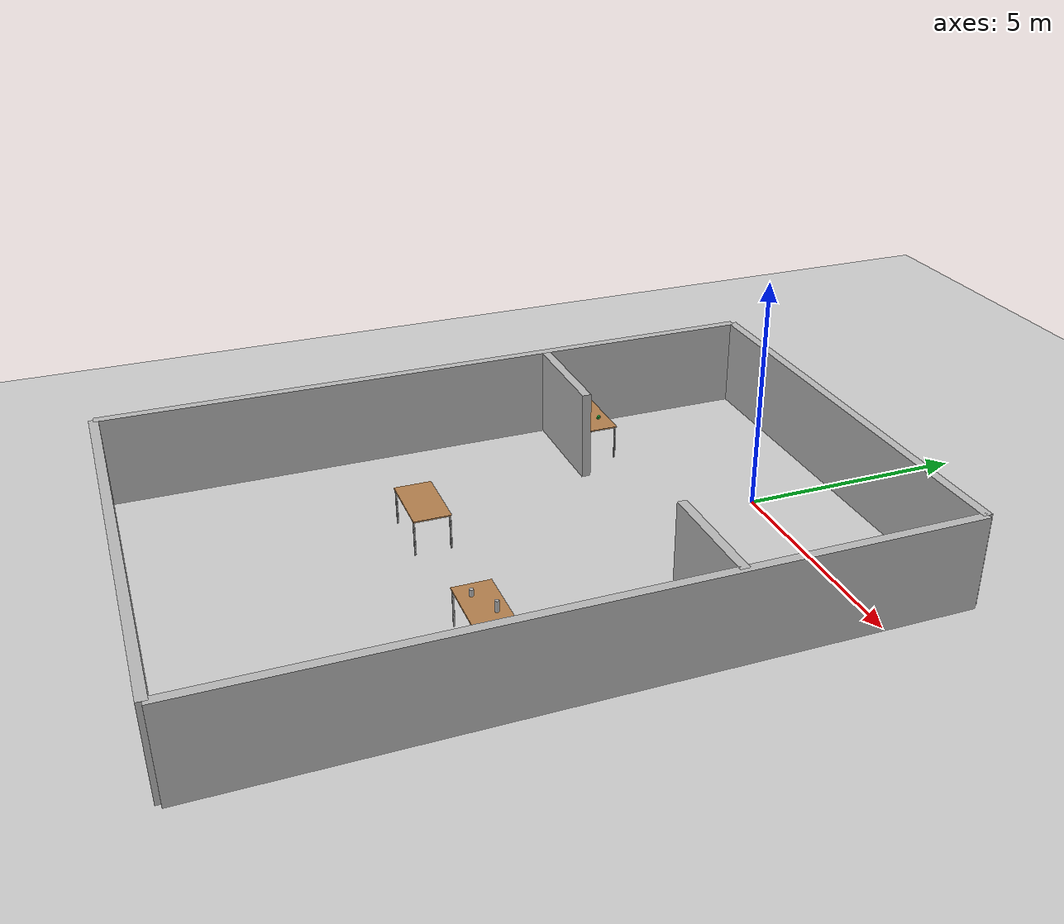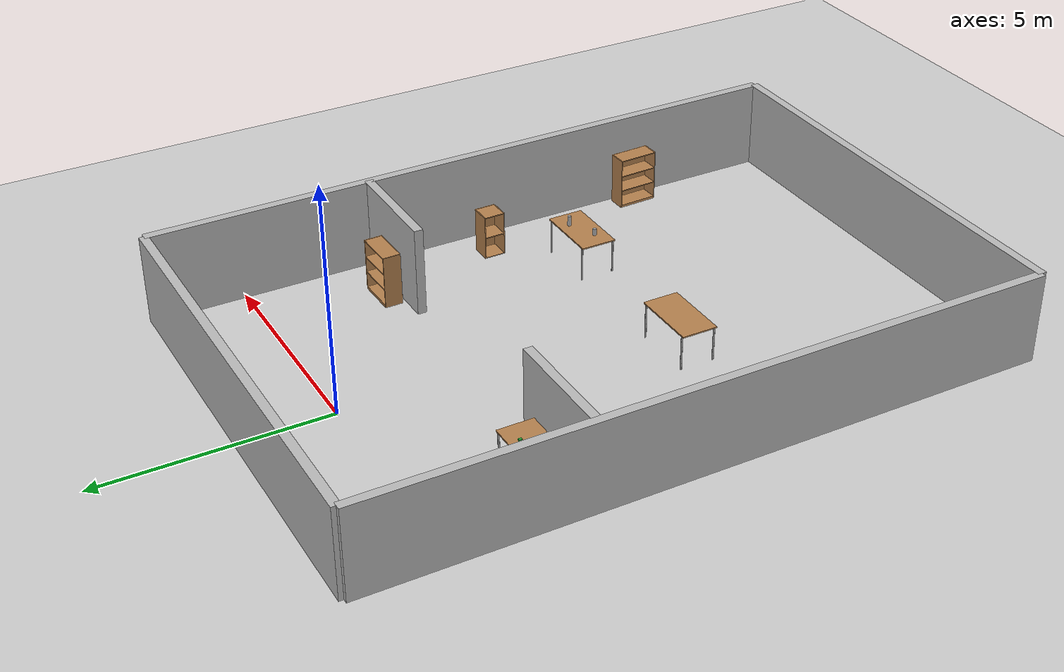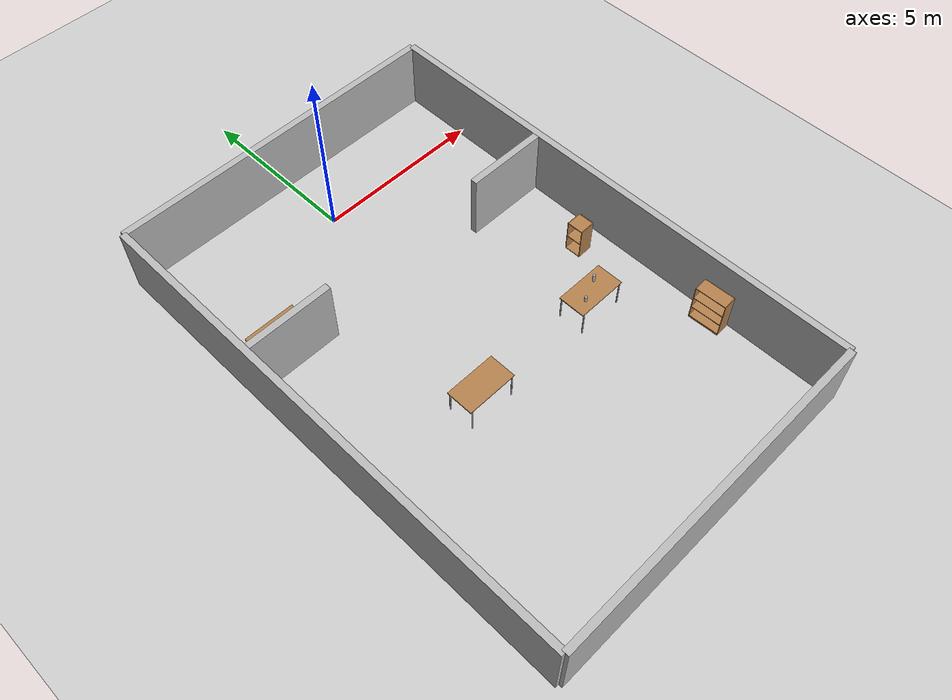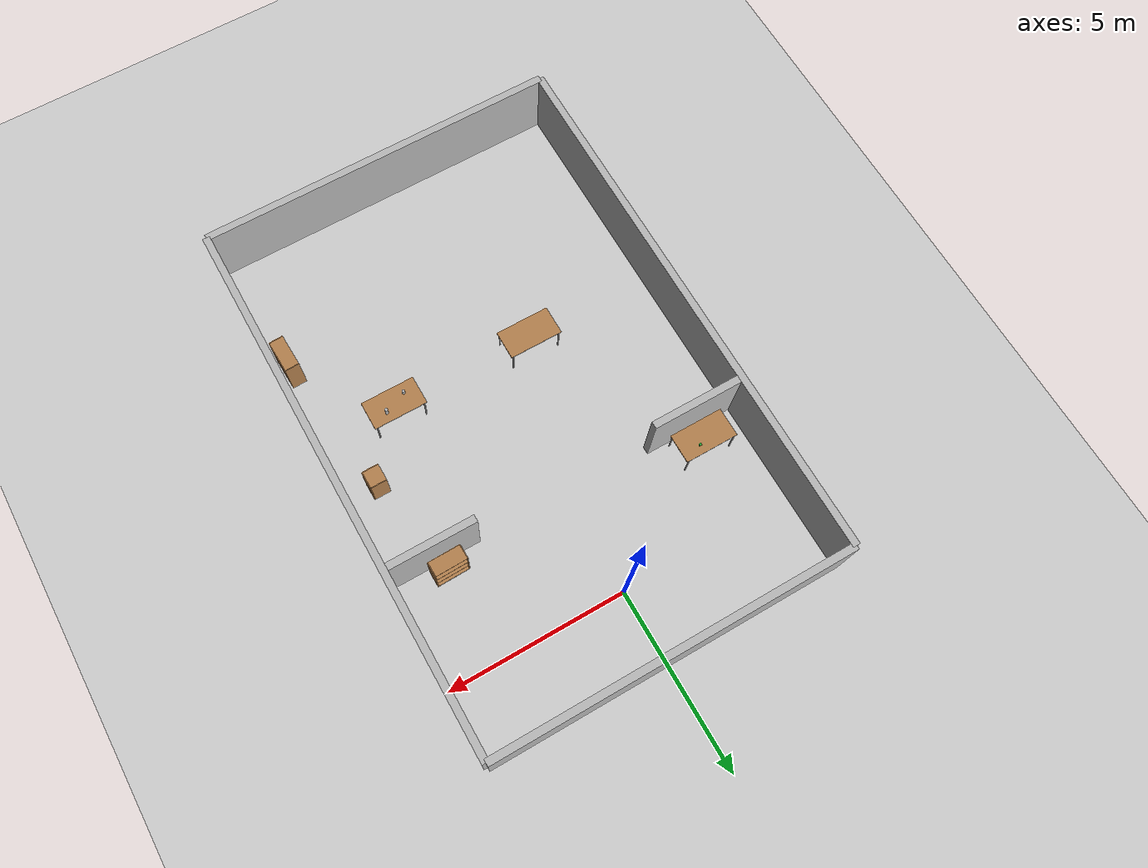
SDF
<sdf version="1.6">
 <world name="default">
  <physics name="default_physics" default="0" type="ode">
   <ode>
    <solver>
     <type>quick</type>
     <iters>20</iters>
     <sor>1</sor>
     <use_dynamic_moi_rescaling>0</use_dynamic_moi_rescaling>
    </solver>
    <constraints>
     <cfm>0</cfm>
     <erp>0.2</erp>
     <contact_max_correcting_vel>100</contact_max_correcting_vel>
     <contact_surface_layer>0</contact_surface_layer>
    </constraints>
   </ode>
   <real_time_update_rate>1000</real_time_update_rate>
   <max_step_size>0.001</max_step_size>
   <real_time_factor>1</real_time_factor>
   <max_contacts>20</max_contacts>
  </physics>
  <light name="sun" type="directional">
   <pose>0 0 10 0 -0 0</pose>
   <diffuse>0.8 0.8 0.8 1</diffuse>
   <specular>0.2 0.2 0.2 1</specular>
   <attenuation>
    <range>1000</range>
    <constant>0.9</constant>
    <linear>0.01</linear>
    <quadratic>0.001</quadratic>
   </attenuation>
   <direction>0.5 0.1 -0.9</direction>
  </light>
  <model name="ground_plane">
   <static>1</static>
   <link name="link">
    <collision name="collision">
     <geometry><plane><normal>0 0 1</normal><size>100 100</size></plane></geometry>
     <surface><friction><ode><mu>100</mu><mu2>50</mu2></ode></friction></surface>
    </collision>
    <visual name="visual">
     <cast_shadows>0</cast_shadows>
     <geometry><plane><normal>0 0 1</normal><size>100 100</size></plane></geometry>
     <material>
      <script><uri>file://media/materials/scripts/gazebo.material</uri><name>Gazebo/Grey</name></script>
     </material>
    </visual>
    <velocity_decay><linear>0</linear><angular>0</angular></velocity_decay>
   </link>
  </model>
  <model name="wall_1_model">
   <pose>0 -13 1 0 -0 0</pose>
   <static>1</static>
   <link name="wall_1_body">
    <inertial>
     <mass>1</mass>
     <inertia><ixx>1</ixx><ixy>0</ixy><ixz>0</ixz><iyy>1</iyy><iyz>0</iyz><izz>1</izz></inertia>
    </inertial>
    <collision name="collision"><geometry><box><size>10 0.2 2</size></box></geometry></collision>
    <visual name="visual"><geometry><box><size>10 0.2 2</size></box></geometry></visual>
    <velocity_decay><linear>0</linear><angular>0</angular></velocity_decay>
   </link>
  </model>
  <model name="wall_2_model">
   <pose>0 2 1 0 -0 0</pose>
   <static>1</static>
   <link name="wall_2_body">
    <inertial>
     <mass>1</mass>
     <inertia><ixx>1</ixx><ixy>0</ixy><ixz>0</ixz><iyy>1</iyy><iyz>0</iyz><izz>1</izz></inertia>
    </inertial>
    <collision name="collision"><geometry><box><size>10 0.2 2</size></box></geometry></collision>
    <visual name="visual"><geometry><box><size>10 0.2 2</size></box></geometry></visual>
    <velocity_decay><linear>0</linear><angular>0</angular></velocity_decay>
   </link>
  </model>
  <model name="wall_3_model">
   <pose>-5 -5.5 1 0 -0 0</pose>
   <static>1</static>
   <link name="wall_3_body">
    <inertial>
     <mass>1</mass>
     <inertia><ixx>1</ixx><ixy>0</ixy><ixz>0</ixz><iyy>1</iyy><iyz>0</iyz><izz>1</izz></inertia>
    </inertial>
    <collision name="collision"><geometry><box><size>0.2 15 2</size></box></geometry></collision>
    <visual name="visual"><geometry><box><size>0.2 15 2</size></box></geometry></visual>
    <velocity_decay><linear>0</linear><angular>0</angular></velocity_decay>
   </link>
  </model>
  <model name="wall_4_model">
   <pose>5 -5.5 1 0 -0 0</pose>
   <static>1</static>
   <link name="wall_4_body">
    <inertial>
     <mass>1</mass>
     <inertia><ixx>1</ixx><ixy>0</ixy><ixz>0</ixz><iyy>1</iyy><iyz>0</iyz><izz>1</izz></inertia>
    </inertial>
    <collision name="collision"><geometry><box><size>0.2 15 2</size></box></geometry></collision>
    <visual name="visual"><geometry><box><size>0.2 15 2</size></box></geometry></visual>
    <velocity_decay><linear>0</linear><angular>0</angular></velocity_decay>
   </link>
  </model>
  <model name="wall_6_model">
   <pose>3.75 -3 1 0 -0 0</pose>
   <static>1</static>
   <link name="wall_6_body">
    <inertial>
     <mass>1</mass>
     <inertia><ixx>1</ixx><ixy>0</ixy><ixz>0</ixz><iyy>1</iyy><iyz>0</iyz><izz>1</izz></inertia>
    </inertial>
    <collision name="collision"><geometry><box><size>2.5 0.2 2</size></box></geometry></collision>
    <visual name="visual"><geometry><box><size>2.5 0.2 2</size></box></geometry></visual>
    <velocity_decay><linear>0</linear><angular>0</angular></velocity_decay>
   </link>
  </model>
  <scene><ambient>0.2 0.2 0.2 1</ambient><background>0.7 0.7 0.7 1</background><shadows>1</shadows></scene>
  <model name="cabinet_0">
   <static>0</static>
   <link name="cabinet_bottom_plate">
    <inertial>
     <pose>0 0 -1 0 -0 0</pose>
     <inertia><ixx>2.05</ixx><ixy>0</ixy><ixz>0</ixz><iyy>2.05</iyy><iyz>0</iyz><izz>2.05</izz></inertia>
     <mass>25</mass>
    </inertial>
    <collision name="cabinet_bottom_plate_geom">
     <pose>0 0 0.01 0 -0 0</pose>
     <geometry><box><size>0.45 0.45 0.02</size></box></geometry>
    </collision>
    <visual name="cabinet_bottom_plate_geom_visual">
     <pose>0 0 0.01 0 -0 0</pose>
     <geometry><box><size>0.45 0.45 0.02</size></box></geometry>
     <material>
      <script><uri>file://media/materials/scripts/gazebo.material</uri><name>Gazebo/Wood</name></script>
     </material>
    </visual>
    <collision name="cabinet_bottom_plate_geom_cabinet_back_plate">
     <pose>0.235 0 0.51 0 -0 0</pose>
     <geometry><box><size>0.02 0.45 1.02</size></box></geometry>
    </collision>
    <visual name="cabinet_bottom_plate_geom_cabinet_back_plate_visual">
     <pose>0.235 0 0.51 0 -0 0</pose>
     <geometry><box><size>0.02 0.45 1.02</size></box></geometry>
     <material>
      <script><uri>file://media/materials/scripts/gazebo.material</uri><name>Gazebo/Wood</name></script>
     </material>
    </visual>
    <collision name="cabinet_bottom_plate_geom_cabinet_left_plate">
     <pose>0 0.235 0.51 0 -0 0</pose>
     <geometry><box><size>0.45 0.02 1.02</size></box></geometry>
    </collision>
    <visual name="cabinet_bottom_plate_geom_cabinet_left_plate_visual">
     <pose>0 0.235 0.51 0 -0 0</pose>
     <geometry><box><size>0.45 0.02 1.02</size></box></geometry>
     <material>
      <script><uri>file://media/materials/scripts/gazebo.material</uri><name>Gazebo/Wood</name></script>
     </material>
    </visual>
    <collision name="cabinet_bottom_plate_geom_cabinet_middle_plate">
     <pose>0 0 0.51 0 -0 0</pose>
     <geometry><box><size>0.45 0.45 0.02</size></box></geometry>
    </collision>
    <visual name="cabinet_bottom_plate_geom_cabinet_middle_plate_visual">
     <pose>0 0 0.51 0 -0 0</pose>
     <geometry><box><size>0.45 0.45 0.02</size></box></geometry>
     <material>
      <script><uri>file://media/materials/scripts/gazebo.material</uri><name>Gazebo/Wood</name></script>
     </material>
    </visual>
    <collision name="cabinet_bottom_plate_geom_cabinet_right_plate">
     <pose>0 -0.235 0.51 0 -0 0</pose>
     <geometry><box><size>0.45 0.02 1.02</size></box></geometry>
    </collision>
    <visual name="cabinet_bottom_plate_geom_cabinet_right_plate_visual">
     <pose>0 -0.235 0.51 0 -0 0</pose>
     <geometry><box><size>0.45 0.02 1.02</size></box></geometry>
     <material>
      <script><uri>file://media/materials/scripts/gazebo.material</uri><name>Gazebo/Wood</name></script>
     </material>
    </visual>
    <collision name="cabinet_bottom_plate_geom_cabinet_top_plate">
     <pose>0 0 1.01 0 -0 0</pose>
     <geometry><box><size>0.45 0.45 0.02</size></box></geometry>
    </collision>
    <visual name="cabinet_bottom_plate_geom_cabinet_top_plate_visual">
     <pose>0 0 1.01 0 -0 0</pose>
     <geometry><box><size>0.45 0.45 0.02</size></box></geometry>
     <material>
      <script><uri>file://media/materials/scripts/gazebo.material</uri><name>Gazebo/Wood</name></script>
     </material>
    </visual>
    <velocity_decay><linear>0</linear><angular>0</angular></velocity_decay>
   </link>
   <pose>4.09035 -5.43081 0 0 -1e-06 0.012799</pose>
  </model>
  <model name="bookshelf">
   <static>0</static>
   <link name="link">
    <inertial>
     <mass>1</mass>
     <inertia><ixx>1</ixx><ixy>0</ixy><ixz>0</ixz><iyy>1</iyy><iyz>0</iyz><izz>1</izz></inertia>
    </inertial>
    <collision name="back">
     <pose>0 0.005 0.6 0 -0 0</pose>
     <geometry><box><size>0.9 0.01 1.2</size></box></geometry>
    </collision>
    <visual name="visual1">
     <pose>0 0.005 0.6 0 -0 0</pose>
     <geometry><box><size>0.9 0.01 1.2</size></box></geometry>
     <material>
      <script><uri>file://media/materials/scripts/gazebo.material</uri><name>Gazebo/Wood</name></script>
     </material>
    </visual>
    <collision name="left_side">
     <pose>0.45 -0.195 0.6 0 -0 0</pose>
     <geometry><box><size>0.02 0.4 1.2</size></box></geometry>
    </collision>
    <visual name="visual2">
     <pose>0.45 -0.195 0.6 0 -0 0</pose>
     <geometry><box><size>0.02 0.4 1.2</size></box></geometry>
     <material>
      <script><uri>file://media/materials/scripts/gazebo.material</uri><name>Gazebo/Wood</name></script>
     </material>
    </visual>
    <collision name="right_side">
     <pose>-0.45 -0.195 0.6 0 -0 0</pose>
     <geometry><box><size>0.02 0.4 1.2</size></box></geometry>
    </collision>
    <visual name="visual3">
     <pose>-0.45 -0.195 0.6 0 -0 0</pose>
     <geometry><box><size>0.02 0.4 1.2</size></box></geometry>
     <material>
      <script><uri>file://media/materials/scripts/gazebo.material</uri><name>Gazebo/Wood</name></script>
     </material>
    </visual>
    <collision name="bottom">
     <pose>0 -0.195 0.03 0 -0 0</pose>
     <geometry><box><size>0.88 0.4 0.06</size></box></geometry>
    </collision>
    <visual name="visual4">
     <pose>0 -0.195 0.03 0 -0 0</pose>
     <geometry><box><size>0.88 0.4 0.06</size></box></geometry>
     <material>
      <script><uri>file://media/materials/scripts/gazebo.material</uri><name>Gazebo/Wood</name></script>
     </material>
    </visual>
    <collision name="top">
     <pose>0 -0.195 1.19 0 -0 0</pose>
     <geometry><box><size>0.88 0.4 0.02</size></box></geometry>
    </collision>
    <visual name="visual5">
     <pose>0 -0.195 1.19 0 -0 0</pose>
     <geometry><box><size>0.88 0.4 0.02</size></box></geometry>
     <material>
      <script><uri>file://media/materials/scripts/gazebo.material</uri><name>Gazebo/Wood</name></script>
     </material>
    </visual>
    <collision name="low_shelf">
     <pose>0 -0.195 0.43 0 -0 0</pose>
     <geometry><box><size>0.88 0.4 0.02</size></box></geometry>
    </collision>
    <visual name="visual6">
     <pose>0 -0.195 0.43 0 -0 0</pose>
     <geometry><box><size>0.88 0.4 0.02</size></box></geometry>
     <material>
      <script><uri>file://media/materials/scripts/gazebo.material</uri><name>Gazebo/Wood</name></script>
     </material>
    </visual>
    <collision name="high_shelf">
     <pose>0 -0.195 0.8 0 -0 0</pose>
     <geometry><box><size>0.88 0.4 0.02</size></box></geometry>
    </collision>
    <visual name="visual7">
     <pose>0 -0.195 0.8 0 -0 0</pose>
     <geometry><box><size>0.88 0.4 0.02</size></box></geometry>
     <material>
      <script><uri>file://media/materials/scripts/gazebo.material</uri><name>Gazebo/Wood</name></script>
     </material>
    </visual>
    <velocity_decay><linear>0</linear><angular>0</angular></velocity_decay>
   </link>
   <pose>4.82374 -9.44357 0 -4.6e-05 -0 -1.53171</pose>
  </model>
  <model name="table">
   <static>1</static>
   <link name="link">
    <collision name="surface">
     <pose>0 0 0.9 0 -0 0</pose>
     <geometry><box><size>1.5 0.8 0.03</size></box></geometry>
    </collision>
    <visual name="visual1">
     <pose>0 0 0.9 0 -0 0</pose>
     <geometry><box><size>1.5 0.8 0.03</size></box></geometry>
     <material>
      <script><uri>file://media/materials/scripts/gazebo.material</uri><name>Gazebo/Wood</name></script>
     </material>
    </visual>
    <collision name="front_left_leg">
     <pose>0.68 0.38 0.5 0 -0 0</pose>
     <geometry><cylinder><radius>0.02</radius><length>0.8</length></cylinder></geometry>
    </collision>
    <visual name="front_left_leg">
     <pose>0.68 0.38 0.5 0 -0 0</pose>
     <geometry><cylinder><radius>0.02</radius><length>0.8</length></cylinder></geometry>
     <material>
      <script><uri>file://media/materials/scripts/gazebo.material</uri><name>Gazebo/Grey</name></script>
     </material>
    </visual>
    <collision name="front_right_leg">
     <pose>0.68 -0.38 0.5 0 -0 0</pose>
     <geometry><cylinder><radius>0.02</radius><length>0.8</length></cylinder></geometry>
    </collision>
    <visual name="front_right_leg">
     <pose>0.68 -0.38 0.5 0 -0 0</pose>
     <geometry><cylinder><radius>0.02</radius><length>0.8</length></cylinder></geometry>
     <material>
      <script><uri>file://media/materials/scripts/gazebo.material</uri><name>Gazebo/Grey</name></script>
     </material>
    </visual>
    <collision name="back_right_leg">
     <pose>-0.68 -0.38 0.5 0 -0 0</pose>
     <geometry><cylinder><radius>0.02</radius><length>0.8</length></cylinder></geometry>
    </collision>
    <visual name="back_right_leg">
     <pose>-0.68 -0.38 0.5 0 -0 0</pose>
     <geometry><cylinder><radius>0.02</radius><length>0.8</length></cylinder></geometry>
     <material>
      <script><uri>file://media/materials/scripts/gazebo.material</uri><name>Gazebo/Grey</name></script>
     </material>
    </visual>
    <collision name="back_left_leg">
     <pose>-0.68 0.38 0.5 0 -0 0</pose>
     <geometry><cylinder><radius>0.02</radius><length>0.8</length></cylinder></geometry>
    </collision>
    <visual name="back_left_leg">
     <pose>-0.68 0.38 0.5 0 -0 0</pose>
     <geometry><cylinder><radius>0.02</radius><length>0.8</length></cylinder></geometry>
     <material>
      <script><uri>file://media/materials/scripts/gazebo.material</uri><name>Gazebo/Grey</name></script>
     </material>
    </visual>
    <velocity_decay><linear>0</linear><angular>0</angular></velocity_decay>
    <inertial>
     <inertia><ixx>1</ixx><ixy>0</ixy><ixz>0</ixz><iyy>1</iyy><iyz>0</iyz><izz>1</izz></inertia>
     <mass>1</mass>
    </inertial>
   </link>
   <pose>-3.71012 -2.33406 -0.100002 0 3e-06 -0.000438</pose>
  </model>
  <model name="table_0">
   <static>1</static>
   <link name="link">
    <collision name="surface">
     <pose>0 0 0.9 0 -0 0</pose>
     <geometry><box><size>1.5 0.8 0.03</size></box></geometry>
    </collision>
    <visual name="visual1">
     <pose>0 0 0.9 0 -0 0</pose>
     <geometry><box><size>1.5 0.8 0.03</size></box></geometry>
     <material>
      <script><uri>file://media/materials/scripts/gazebo.material</uri><name>Gazebo/Wood</name></script>
     </material>
    </visual>
    <collision name="front_left_leg">
     <pose>0.68 0.38 0.5 0 -0 0</pose>
     <geometry><cylinder><radius>0.02</radius><length>0.8</length></cylinder></geometry>
    </collision>
    <visual name="front_left_leg">
     <pose>0.68 0.38 0.5 0 -0 0</pose>
     <geometry><cylinder><radius>0.02</radius><length>0.8</length></cylinder></geometry>
     <material>
      <script><uri>file://media/materials/scripts/gazebo.material</uri><name>Gazebo/Grey</name></script>
     </material>
    </visual>
    <collision name="front_right_leg">
     <pose>0.68 -0.38 0.5 0 -0 0</pose>
     <geometry><cylinder><radius>0.02</radius><length>0.8</length></cylinder></geometry>
    </collision>
    <visual name="front_right_leg">
     <pose>0.68 -0.38 0.5 0 -0 0</pose>
     <geometry><cylinder><radius>0.02</radius><length>0.8</length></cylinder></geometry>
     <material>
      <script><uri>file://media/materials/scripts/gazebo.material</uri><name>Gazebo/Grey</name></script>
     </material>
    </visual>
    <collision name="back_right_leg">
     <pose>-0.68 -0.38 0.5 0 -0 0</pose>
     <geometry><cylinder><radius>0.02</radius><length>0.8</length></cylinder></geometry>
    </collision>
    <visual name="back_right_leg">
     <pose>-0.68 -0.38 0.5 0 -0 0</pose>
     <geometry><cylinder><radius>0.02</radius><length>0.8</length></cylinder></geometry>
     <material>
      <script><uri>file://media/materials/scripts/gazebo.material</uri><name>Gazebo/Grey</name></script>
     </material>
    </visual>
    <collision name="back_left_leg">
     <pose>-0.68 0.38 0.5 0 -0 0</pose>
     <geometry><cylinder><radius>0.02</radius><length>0.8</length></cylinder></geometry>
    </collision>
    <visual name="back_left_leg">
     <pose>-0.68 0.38 0.5 0 -0 0</pose>
     <geometry><cylinder><radius>0.02</radius><length>0.8</length></cylinder></geometry>
     <material>
      <script><uri>file://media/materials/scripts/gazebo.material</uri><name>Gazebo/Grey</name></script>
     </material>
    </visual>
    <velocity_decay><linear>0</linear><angular>0</angular></velocity_decay>
    <inertial>
     <inertia><ixx>1</ixx><ixy>0</ixy><ixz>0</ixz><iyy>1</iyy><iyz>0</iyz><izz>1</izz></inertia>
     <mass>1</mass>
    </inertial>
   </link>
   <pose>2.75 -7 -0.111399 -0.001266 -9.5e-05 -0.000223</pose>
  </model>
  <model name="table_1">
   <static>1</static>
   <link name="link">
    <collision name="surface">
     <pose>0 0 0.9 0 -0 0</pose>
     <geometry><box><size>1.5 0.8 0.03</size></box></geometry>
    </collision>
    <visual name="visual1">
     <pose>0 0 0.9 0 -0 0</pose>
     <geometry><box><size>1.5 0.8 0.03</size></box></geometry>
     <material>
      <script><uri>file://media/materials/scripts/gazebo.material</uri><name>Gazebo/Wood</name></script>
     </material>
    </visual>
    <collision name="front_left_leg">
     <pose>0.68 0.38 0.5 0 -0 0</pose>
     <geometry><cylinder><radius>0.02</radius><length>0.8</length></cylinder></geometry>
    </collision>
    <visual name="front_left_leg">
     <pose>0.68 0.38 0.5 0 -0 0</pose>
     <geometry><cylinder><radius>0.02</radius><length>0.8</length></cylinder></geometry>
     <material>
      <script><uri>file://media/materials/scripts/gazebo.material</uri><name>Gazebo/Grey</name></script>
     </material>
    </visual>
    <collision name="front_right_leg">
     <pose>0.68 -0.38 0.5 0 -0 0</pose>
     <geometry><cylinder><radius>0.02</radius><length>0.8</length></cylinder></geometry>
    </collision>
    <visual name="front_right_leg">
     <pose>0.68 -0.38 0.5 0 -0 0</pose>
     <geometry><cylinder><radius>0.02</radius><length>0.8</length></cylinder></geometry>
     <material>
      <script><uri>file://media/materials/scripts/gazebo.material</uri><name>Gazebo/Grey</name></script>
     </material>
    </visual>
    <collision name="back_right_leg">
     <pose>-0.68 -0.38 0.5 0 -0 0</pose>
     <geometry><cylinder><radius>0.02</radius><length>0.8</length></cylinder></geometry>
    </collision>
    <visual name="back_right_leg">
     <pose>-0.68 -0.38 0.5 0 -0 0</pose>
     <geometry><cylinder><radius>0.02</radius><length>0.8</length></cylinder></geometry>
     <material>
      <script><uri>file://media/materials/scripts/gazebo.material</uri><name>Gazebo/Grey</name></script>
     </material>
    </visual>
    <collision name="back_left_leg">
     <pose>-0.68 0.38 0.5 0 -0 0</pose>
     <geometry><cylinder><radius>0.02</radius><length>0.8</length></cylinder></geometry>
    </collision>
    <visual name="back_left_leg">
     <pose>-0.68 0.38 0.5 0 -0 0</pose>
     <geometry><cylinder><radius>0.02</radius><length>0.8</length></cylinder></geometry>
     <material>
      <script><uri>file://media/materials/scripts/gazebo.material</uri><name>Gazebo/Grey</name></script>
     </material>
    </visual>
    <velocity_decay><linear>0</linear><angular>0</angular></velocity_decay>
    <inertial>
     <inertia><ixx>1</ixx><ixy>0</ixy><ixz>0</ixz><iyy>1</iyy><iyz>0</iyz><izz>1</izz></inertia>
     <mass>1</mass>
    </inertial>
   </link>
   <pose>-1.25 -7 -0.100008 -0 -0 -2.3e-05</pose>
  </model>
  <model name="bookshelf_4">
   <static>0</static>
   <link name="link">
    <inertial>
     <mass>1</mass>
     <inertia><ixx>1</ixx><ixy>0</ixy><ixz>0</ixz><iyy>1</iyy><iyz>0</iyz><izz>1</izz></inertia>
    </inertial>
    <collision name="back">
     <pose>0 0.005 0.6 0 -0 0</pose>
     <geometry><box><size>0.9 0.01 1.2</size></box></geometry>
    </collision>
    <visual name="visual1">
     <pose>0 0.005 0.6 0 -0 0</pose>
     <geometry><box><size>0.9 0.01 1.2</size></box></geometry>
     <material>
      <script><uri>file://media/materials/scripts/gazebo.material</uri><name>Gazebo/Wood</name></script>
     </material>
    </visual>
    <collision name="left_side">
     <pose>0.45 -0.195 0.6 0 -0 0</pose>
     <geometry><box><size>0.02 0.4 1.2</size></box></geometry>
    </collision>
    <visual name="visual2">
     <pose>0.45 -0.195 0.6 0 -0 0</pose>
     <geometry><box><size>0.02 0.4 1.2</size></box></geometry>
     <material>
      <script><uri>file://media/materials/scripts/gazebo.material</uri><name>Gazebo/Wood</name></script>
     </material>
    </visual>
    <collision name="right_side">
     <pose>-0.45 -0.195 0.6 0 -0 0</pose>
     <geometry><box><size>0.02 0.4 1.2</size></box></geometry>
    </collision>
    <visual name="visual3">
     <pose>-0.45 -0.195 0.6 0 -0 0</pose>
     <geometry><box><size>0.02 0.4 1.2</size></box></geometry>
     <material>
      <script><uri>file://media/materials/scripts/gazebo.material</uri><name>Gazebo/Wood</name></script>
     </material>
    </visual>
    <collision name="bottom">
     <pose>0 -0.195 0.03 0 -0 0</pose>
     <geometry><box><size>0.88 0.4 0.06</size></box></geometry>
    </collision>
    <visual name="visual4">
     <pose>0 -0.195 0.03 0 -0 0</pose>
     <geometry><box><size>0.88 0.4 0.06</size></box></geometry>
     <material>
      <script><uri>file://media/materials/scripts/gazebo.material</uri><name>Gazebo/Wood</name></script>
     </material>
    </visual>
    <collision name="top">
     <pose>0 -0.195 1.19 0 -0 0</pose>
     <geometry><box><size>0.88 0.4 0.02</size></box></geometry>
    </collision>
    <visual name="visual5">
     <pose>0 -0.195 1.19 0 -0 0</pose>
     <geometry><box><size>0.88 0.4 0.02</size></box></geometry>
     <material>
      <script><uri>file://media/materials/scripts/gazebo.material</uri><name>Gazebo/Wood</name></script>
     </material>
    </visual>
    <collision name="low_shelf">
     <pose>0 -0.195 0.43 0 -0 0</pose>
     <geometry><box><size>0.88 0.4 0.02</size></box></geometry>
    </collision>
    <visual name="visual6">
     <pose>0 -0.195 0.43 0 -0 0</pose>
     <geometry><box><size>0.88 0.4 0.02</size></box></geometry>
     <material>
      <script><uri>file://media/materials/scripts/gazebo.material</uri><name>Gazebo/Wood</name></script>
     </material>
    </visual>
    <collision name="high_shelf">
     <pose>0 -0.195 0.8 0 -0 0</pose>
     <geometry><box><size>0.88 0.4 0.02</size></box></geometry>
    </collision>
    <visual name="visual7">
     <pose>0 -0.195 0.8 0 -0 0</pose>
     <geometry><box><size>0.88 0.4 0.02</size></box></geometry>
     <material>
      <script><uri>file://media/materials/scripts/gazebo.material</uri><name>Gazebo/Wood</name></script>
     </material>
    </visual>
    <velocity_decay><linear>0</linear><angular>0</angular></velocity_decay>
   </link>
   <pose>3.5288 -2.79801 1e-06 -3.4e-05 1e-06 -3.12213</pose>
  </model>
  <gravity>0 0 -9.81</gravity>
  <magnetic_field>6e-06 2.3e-05 -4.2e-05</magnetic_field>
  <atmosphere type="adiabatic"/>
  <audio><device>default</device></audio>
  <spherical_coordinates>
   <surface_model>EARTH_WGS84</surface_model>
   <latitude_deg>0</latitude_deg>
   <longitude_deg>0</longitude_deg>
   <elevation>0</elevation>
   <heading_deg>0</heading_deg>
  </spherical_coordinates>
  <model name="wall_6_model_clone">
   <pose>-3.66155 -2.903 1 0 -0 0</pose>
   <static>1</static>
   <link name="wall_6_body">
    <inertial>
     <mass>1</mass>
     <inertia><ixx>1</ixx><ixy>0</ixy><ixz>0</ixz><iyy>1</iyy><iyz>0</iyz><izz>1</izz></inertia>
    </inertial>
    <collision name="collision"><geometry><box><size>2.5 0.2 2</size></box></geometry></collision>
    <visual name="visual"><geometry><box><size>2.5 0.2 2</size></box></geometry></visual>
    <velocity_decay><linear>0</linear><angular>0</angular></velocity_decay>
   </link>
  </model>
  <model name="green_cube">
   <allow_auto_disable>0</allow_auto_disable>
   <static>0</static>
   <link name="link">
    <inertial>
     <mass>0.25</mass>
     <inertia>
      <ixx>4.1667e-05</ixx>
      <ixy>0</ixy>
      <ixz>0</ixz>
      <iyy>4.1667e-05</iyy>
      <iyz>0</iyz>
      <izz>4.1667e-05</izz>
     </inertia>
    </inertial>
    <visual name="visual">
     <geometry><box><size>0.06 0.06 0.06</size></box></geometry>
     <material>
      <script><uri>file://media/materials/scripts/gazebo.material</uri><name>Gazebo/Green</name></script>
     </material>
    </visual>
    <collision name="collision">
     <geometry><box><size>0.06 0.06 0.06</size></box></geometry>
     <surface>
      <friction><ode><mu>30</mu><mu2>30</mu2></ode></friction>
      <contact><ode><kp>1e+06</kp><kd>100</kd><max_vel>1</max_vel><min_depth>0.0025</min_depth></ode></contact>
     </surface>
    </collision>
    <velocity_decay><linear>0</linear><angular>0</angular></velocity_decay>
   </link>
   <pose>-3.48787 -2.16372 0.844991 0 -0.000167 -0.024193</pose>
  </model>
  <model name="cocacola">
   <static>0</static>
   <link name="link">
    <inertial>
     <mass>0.25</mass>
     <inertia><ixx>0</ixx><ixy>0</ixy><ixz>0</ixz><iyy>0</iyy><iyz>0</iyz><izz>0</izz></inertia>
    </inertial>
    <collision name="collision">
     <pose>0 0 0.075 -3.14159 -0 0</pose>
     <geometry><cylinder><radius>0.04</radius><length>0.15</length></cylinder></geometry>
    </collision>
    <visual name="visual">
     <pose>0 0 0.075 -3.14159 -0 0</pose>
     <geometry><cylinder><radius>0.04</radius><length>0.15</length></cylinder></geometry>
     <material>
      <script>
       <uri>model://cocacola/material/scripts</uri>
       <uri>model://cocacola/material/textures</uri>
       <name>Custom/cocacola</name>
      </script>
     </material>
    </visual>
    <velocity_decay><linear>0</linear><angular>0</angular></velocity_decay>
   </link>
   <pose>2.40351 -7.12016 0.803495 -0.001906 -0.000566 0.002756</pose>
  </model>
  <model name="pringles2">
   <static>0</static>
   <link name="link">
    <inertial>
     <mass>0.25</mass>
     <inertia><ixx>0</ixx><ixy>0</ixy><ixz>0</ixz><iyy>0</iyy><iyz>0</iyz><izz>0</izz></inertia>
    </inertial>
    <collision name="collision">
     <pose>0 0 0.12 -3.14159 -0 0</pose>
     <geometry><cylinder><radius>0.04</radius><length>0.235</length></cylinder></geometry>
    </collision>
    <visual name="visual">
     <pose>0 0 0.12 -3.14159 -0 0</pose>
     <geometry><cylinder><radius>0.04</radius><length>0.235</length></cylinder></geometry>
     <material>
      <script>
       <uri>model://pringles2/material/scripts</uri>
       <uri>model://pringles2/material/textures</uri>
       <name>Custom/pringles2</name>
      </script>
     </material>
    </visual>
    <velocity_decay><linear>0</linear><angular>0</angular></velocity_decay>
   </link>
   <pose>3.02984 -6.8421 0.800687 -0.000943 -0.000388 -0.00572</pose>
  </model>
 </world>
 <plugin filename="libcollision_map_creator.so" name="collision_map_creator"/>
</sdf>
